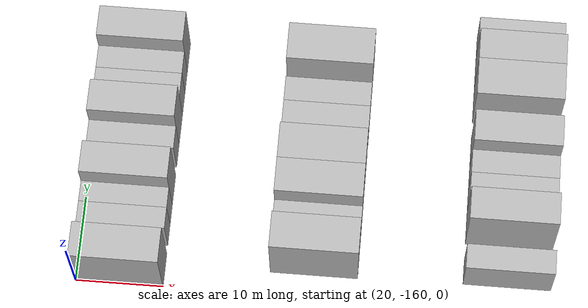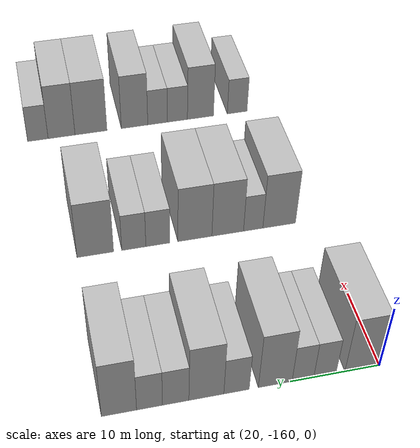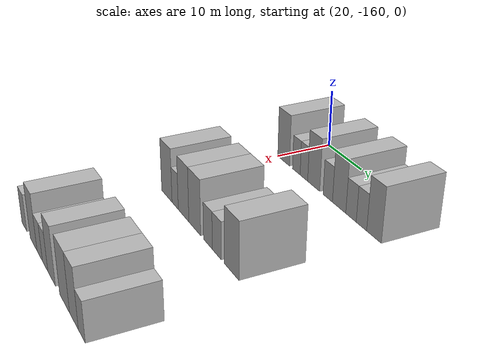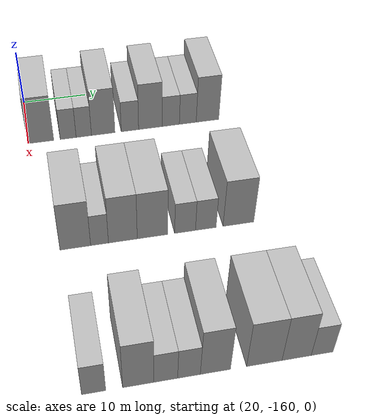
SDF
<sdf version="1.6">
 <world name="default">
  <model name="building_24">
   <static>1</static>
   <pose>25.0000 -158.1047 0 0.000000 0.000000 0.000000</pose>
   <link name="link">
    <pose>0 0 4.50 0 0 0</pose>
    <collision name="collision"><geometry><box><size>10.0000 4.0403 9.0000</size></box></geometry></collision>
    <visual name="visual">
     <cast_shadows>0</cast_shadows>
     <geometry><box><size>10.0000 4.0403 9.0000</size></box></geometry>
     <material>
      <script>
       <uri>model://HANNAS_wall/materials/scripts</uri>
       <uri>model://HANNAS_wall/materials/textures</uri>
       <name>vrc/HANNAS_wall</name>
      </script>
     </material>
    </visual>
   </link>
  </model>
  <model name="building_25">
   <static>1</static>
   <pose>25.0000 -153.8327 0 0.000000 0.000000 0.000000</pose>
   <link name="link">
    <pose>0 0 3.00 0 0 0</pose>
    <collision name="collision"><geometry><box><size>10.0000 2.5037 6.0000</size></box></geometry></collision>
    <visual name="visual">
     <cast_shadows>0</cast_shadows>
     <geometry><box><size>10.0000 2.5037 6.0000</size></box></geometry>
     <material>
      <script>
       <uri>model://HANNAS_wall/materials/scripts</uri>
       <uri>model://HANNAS_wall/materials/textures</uri>
       <name>vrc/HANNAS_wall</name>
      </script>
     </material>
    </visual>
   </link>
  </model>
  <model name="building_26">
   <static>1</static>
   <pose>25.0000 -151.3712 0 0.000000 0.000000 0.000000</pose>
   <link name="link">
    <pose>0 0 3.00 0 0 0</pose>
    <collision name="collision"><geometry><box><size>10.0000 2.4193 6.0000</size></box></geometry></collision>
    <visual name="visual">
     <cast_shadows>0</cast_shadows>
     <geometry><box><size>10.0000 2.4193 6.0000</size></box></geometry>
     <material>
      <script>
       <uri>model://HANNAS_wall/materials/scripts</uri>
       <uri>model://HANNAS_wall/materials/textures</uri>
       <name>vrc/HANNAS_wall</name>
      </script>
     </material>
    </visual>
   </link>
  </model>
  <model name="building_27">
   <static>1</static>
   <pose>25.0000 -148.2993 0 0.000000 0.000000 0.000000</pose>
   <link name="link">
    <pose>0 0 4.50 0 0 0</pose>
    <collision name="collision"><geometry><box><size>10.0000 3.7246 9.0000</size></box></geometry></collision>
    <visual name="visual">
     <cast_shadows>0</cast_shadows>
     <geometry><box><size>10.0000 3.7246 9.0000</size></box></geometry>
     <material>
      <script>
       <uri>model://HANNAS_wall/materials/scripts</uri>
       <uri>model://HANNAS_wall/materials/textures</uri>
       <name>vrc/HANNAS_wall</name>
      </script>
     </material>
    </visual>
   </link>
  </model>
  <model name="building_28">
   <static>1</static>
   <pose>25.0000 -144.0534 0 0.000000 0.000000 0.000000</pose>
   <link name="link">
    <pose>0 0 3.00 0 0 0</pose>
    <collision name="collision"><geometry><box><size>10.0000 2.7671 6.0000</size></box></geometry></collision>
    <visual name="visual">
     <cast_shadows>0</cast_shadows>
     <geometry><box><size>10.0000 2.7671 6.0000</size></box></geometry>
     <material>
      <script>
       <uri>model://HANNAS_wall/materials/scripts</uri>
       <uri>model://HANNAS_wall/materials/textures</uri>
       <name>vrc/HANNAS_wall</name>
      </script>
     </material>
    </visual>
   </link>
  </model>
  <model name="building_29">
   <static>1</static>
   <pose>25.0000 -140.7828 0 0.000000 0.000000 0.000000</pose>
   <link name="link">
    <pose>0 0 4.50 0 0 0</pose>
    <collision name="collision"><geometry><box><size>10.0000 3.7740 9.0000</size></box></geometry></collision>
    <visual name="visual">
     <cast_shadows>0</cast_shadows>
     <geometry><box><size>10.0000 3.7740 9.0000</size></box></geometry>
     <material>
      <script>
       <uri>model://HANNAS_wall/materials/scripts</uri>
       <uri>model://HANNAS_wall/materials/textures</uri>
       <name>vrc/HANNAS_wall</name>
      </script>
     </material>
    </visual>
   </link>
  </model>
  <model name="building_30">
   <static>1</static>
   <pose>25.0000 -137.4815 0 0.000000 0.000000 0.000000</pose>
   <link name="link">
    <pose>0 0 3.00 0 0 0</pose>
    <collision name="collision"><geometry><box><size>10.0000 2.8286 6.0000</size></box></geometry></collision>
    <visual name="visual">
     <cast_shadows>0</cast_shadows>
     <geometry><box><size>10.0000 2.8286 6.0000</size></box></geometry>
     <material>
      <script>
       <uri>model://HANNAS_wall/materials/scripts</uri>
       <uri>model://HANNAS_wall/materials/textures</uri>
       <name>vrc/HANNAS_wall</name>
      </script>
     </material>
    </visual>
   </link>
  </model>
  <model name="building_31">
   <static>1</static>
   <pose>25.0000 -134.6977 0 0.000000 0.000000 0.000000</pose>
   <link name="link">
    <pose>0 0 3.00 0 0 0</pose>
    <collision name="collision"><geometry><box><size>10.0000 2.7391 6.0000</size></box></geometry></collision>
    <visual name="visual">
     <cast_shadows>0</cast_shadows>
     <geometry><box><size>10.0000 2.7391 6.0000</size></box></geometry>
     <material>
      <script>
       <uri>model://HANNAS_wall/materials/scripts</uri>
       <uri>model://HANNAS_wall/materials/textures</uri>
       <name>vrc/HANNAS_wall</name>
      </script>
     </material>
    </visual>
   </link>
  </model>
  <model name="building_32">
   <static>1</static>
   <pose>25.0000 -131.4777 0 0.000000 0.000000 0.000000</pose>
   <link name="link">
    <pose>0 0 4.50 0 0 0</pose>
    <collision name="collision"><geometry><box><size>10.0000 3.7009 9.0000</size></box></geometry></collision>
    <visual name="visual">
     <cast_shadows>0</cast_shadows>
     <geometry><box><size>10.0000 3.7009 9.0000</size></box></geometry>
     <material>
      <script>
       <uri>model://HANNAS_wall/materials/scripts</uri>
       <uri>model://HANNAS_wall/materials/textures</uri>
       <name>vrc/HANNAS_wall</name>
      </script>
     </material>
    </visual>
   </link>
  </model>
  <model name="building_158">
   <static>1</static>
   <pose>47.0000 -155.2404 0 0.000000 0.000000 0.000000</pose>
   <link name="link">
    <pose>0 0 4.50 0 0 0</pose>
    <collision name="collision"><geometry><box><size>10.0000 4.2071 9.0000</size></box></geometry></collision>
    <visual name="visual">
     <cast_shadows>0</cast_shadows>
     <geometry><box><size>10.0000 4.2071 9.0000</size></box></geometry>
     <material>
      <script>
       <uri>model://HANNAS_wall/materials/scripts</uri>
       <uri>model://HANNAS_wall/materials/textures</uri>
       <name>vrc/HANNAS_wall</name>
      </script>
     </material>
    </visual>
   </link>
  </model>
  <model name="building_159">
   <static>1</static>
   <pose>47.0000 -151.9055 0 0.000000 0.000000 0.000000</pose>
   <link name="link">
    <pose>0 0 3.00 0 0 0</pose>
    <collision name="collision"><geometry><box><size>10.0000 2.4627 6.0000</size></box></geometry></collision>
    <visual name="visual">
     <cast_shadows>0</cast_shadows>
     <geometry><box><size>10.0000 2.4627 6.0000</size></box></geometry>
     <material>
      <script>
       <uri>model://HANNAS_wall/materials/scripts</uri>
       <uri>model://HANNAS_wall/materials/textures</uri>
       <name>vrc/HANNAS_wall</name>
      </script>
     </material>
    </visual>
   </link>
  </model>
  <model name="building_160">
   <static>1</static>
   <pose>47.0000 -148.6690 0 0.000000 0.000000 0.000000</pose>
   <link name="link">
    <pose>0 0 4.50 0 0 0</pose>
    <collision name="collision"><geometry><box><size>10.0000 4.0103 9.0000</size></box></geometry></collision>
    <visual name="visual">
     <cast_shadows>0</cast_shadows>
     <geometry><box><size>10.0000 4.0103 9.0000</size></box></geometry>
     <material>
      <script>
       <uri>model://HANNAS_wall/materials/scripts</uri>
       <uri>model://HANNAS_wall/materials/textures</uri>
       <name>vrc/HANNAS_wall</name>
      </script>
     </material>
    </visual>
   </link>
  </model>
  <model name="building_161">
   <static>1</static>
   <pose>47.0000 -144.5327 0 0.000000 0.000000 0.000000</pose>
   <link name="link">
    <pose>0 0 4.50 0 0 0</pose>
    <collision name="collision"><geometry><box><size>10.0000 4.2622 9.0000</size></box></geometry></collision>
    <visual name="visual">
     <cast_shadows>0</cast_shadows>
     <geometry><box><size>10.0000 4.2622 9.0000</size></box></geometry>
     <material>
      <script>
       <uri>model://HANNAS_wall/materials/scripts</uri>
       <uri>model://HANNAS_wall/materials/textures</uri>
       <name>vrc/HANNAS_wall</name>
      </script>
     </material>
    </visual>
   </link>
  </model>
  <model name="building_162">
   <static>1</static>
   <pose>47.0000 -139.9137 0 0.000000 0.000000 0.000000</pose>
   <link name="link">
    <pose>0 0 3.00 0 0 0</pose>
    <collision name="collision"><geometry><box><size>10.0000 2.9758 6.0000</size></box></geometry></collision>
    <visual name="visual">
     <cast_shadows>0</cast_shadows>
     <geometry><box><size>10.0000 2.9758 6.0000</size></box></geometry>
     <material>
      <script>
       <uri>model://HANNAS_wall/materials/scripts</uri>
       <uri>model://HANNAS_wall/materials/textures</uri>
       <name>vrc/HANNAS_wall</name>
      </script>
     </material>
    </visual>
   </link>
  </model>
  <model name="building_163">
   <static>1</static>
   <pose>47.0000 -136.9492 0 0.000000 0.000000 0.000000</pose>
   <link name="link">
    <pose>0 0 3.00 0 0 0</pose>
    <collision name="collision"><geometry><box><size>10.0000 2.9533 6.0000</size></box></geometry></collision>
    <visual name="visual">
     <cast_shadows>0</cast_shadows>
     <geometry><box><size>10.0000 2.9533 6.0000</size></box></geometry>
     <material>
      <script>
       <uri>model://HANNAS_wall/materials/scripts</uri>
       <uri>model://HANNAS_wall/materials/textures</uri>
       <name>vrc/HANNAS_wall</name>
      </script>
     </material>
    </visual>
   </link>
  </model>
  <model name="building_164">
   <static>1</static>
   <pose>47.0000 -132.2496 0 0.000000 0.000000 0.000000</pose>
   <link name="link">
    <pose>0 0 4.50 0 0 0</pose>
    <collision name="collision"><geometry><box><size>10.0000 4.4460 9.0000</size></box></geometry></collision>
    <visual name="visual">
     <cast_shadows>0</cast_shadows>
     <geometry><box><size>10.0000 4.4460 9.0000</size></box></geometry>
     <material>
      <script>
       <uri>model://HANNAS_wall/materials/scripts</uri>
       <uri>model://HANNAS_wall/materials/textures</uri>
       <name>vrc/HANNAS_wall</name>
      </script>
     </material>
    </visual>
   </link>
  </model>
  <model name="building_283">
   <static>1</static>
   <pose>69.0000 -155.6148 0 0.000000 0.000000 0.000000</pose>
   <link name="link">
    <pose>0 0 3.00 0 0 0</pose>
    <collision name="collision"><geometry><box><size>10.0000 2.8537 6.0000</size></box></geometry></collision>
    <visual name="visual">
     <cast_shadows>0</cast_shadows>
     <geometry><box><size>10.0000 2.8537 6.0000</size></box></geometry>
     <material>
      <script>
       <uri>model://HANNAS_wall/materials/scripts</uri>
       <uri>model://HANNAS_wall/materials/textures</uri>
       <name>vrc/HANNAS_wall</name>
      </script>
     </material>
    </visual>
   </link>
  </model>
  <model name="building_284">
   <static>1</static>
   <pose>69.0000 -150.3148 0 0.000000 0.000000 0.000000</pose>
   <link name="link">
    <pose>0 0 4.50 0 0 0</pose>
    <collision name="collision"><geometry><box><size>10.0000 3.7462 9.0000</size></box></geometry></collision>
    <visual name="visual">
     <cast_shadows>0</cast_shadows>
     <geometry><box><size>10.0000 3.7462 9.0000</size></box></geometry>
     <material>
      <script>
       <uri>model://HANNAS_wall/materials/scripts</uri>
       <uri>model://HANNAS_wall/materials/textures</uri>
       <name>vrc/HANNAS_wall</name>
      </script>
     </material>
    </visual>
   </link>
  </model>
  <model name="building_285">
   <static>1</static>
   <pose>69.0000 -147.0103 0 0.000000 0.000000 0.000000</pose>
   <link name="link">
    <pose>0 0 3.00 0 0 0</pose>
    <collision name="collision"><geometry><box><size>10.0000 2.8628 6.0000</size></box></geometry></collision>
    <visual name="visual">
     <cast_shadows>0</cast_shadows>
     <geometry><box><size>10.0000 2.8628 6.0000</size></box></geometry>
     <material>
      <script>
       <uri>model://HANNAS_wall/materials/scripts</uri>
       <uri>model://HANNAS_wall/materials/textures</uri>
       <name>vrc/HANNAS_wall</name>
      </script>
     </material>
    </visual>
   </link>
  </model>
  <model name="building_286">
   <static>1</static>
   <pose>69.0000 -144.2001 0 0.000000 0.000000 0.000000</pose>
   <link name="link">
    <pose>0 0 3.00 0 0 0</pose>
    <collision name="collision"><geometry><box><size>10.0000 2.7576 6.0000</size></box></geometry></collision>
    <visual name="visual">
     <cast_shadows>0</cast_shadows>
     <geometry><box><size>10.0000 2.7576 6.0000</size></box></geometry>
     <material>
      <script>
       <uri>model://HANNAS_wall/materials/scripts</uri>
       <uri>model://HANNAS_wall/materials/textures</uri>
       <name>vrc/HANNAS_wall</name>
      </script>
     </material>
    </visual>
   </link>
  </model>
  <model name="building_287">
   <static>1</static>
   <pose>69.0000 -140.9666 0 0.000000 0.000000 0.000000</pose>
   <link name="link">
    <pose>0 0 4.50 0 0 0</pose>
    <collision name="collision"><geometry><box><size>10.0000 3.7094 9.0000</size></box></geometry></collision>
    <visual name="visual">
     <cast_shadows>0</cast_shadows>
     <geometry><box><size>10.0000 3.7094 9.0000</size></box></geometry>
     <material>
      <script>
       <uri>model://HANNAS_wall/materials/scripts</uri>
       <uri>model://HANNAS_wall/materials/textures</uri>
       <name>vrc/HANNAS_wall</name>
      </script>
     </material>
    </visual>
   </link>
  </model>
  <model name="building_288">
   <static>1</static>
   <pose>69.0000 -134.8986 0 0.000000 0.000000 0.000000</pose>
   <link name="link">
    <pose>0 0 4.50 0 0 0</pose>
    <collision name="collision"><geometry><box><size>10.0000 4.4265 9.0000</size></box></geometry></collision>
    <visual name="visual">
     <cast_shadows>0</cast_shadows>
     <geometry><box><size>10.0000 4.4265 9.0000</size></box></geometry>
     <material>
      <script>
       <uri>model://HANNAS_wall/materials/scripts</uri>
       <uri>model://HANNAS_wall/materials/textures</uri>
       <name>vrc/HANNAS_wall</name>
      </script>
     </material>
    </visual>
   </link>
  </model>
  <model name="building_289">
   <static>1</static>
   <pose>69.0000 -130.8397 0 0.000000 0.000000 0.000000</pose>
   <link name="link">
    <pose>0 0 4.50 0 0 0</pose>
    <collision name="collision"><geometry><box><size>10.0000 3.6914 9.0000</size></box></geometry></collision>
    <visual name="visual">
     <cast_shadows>0</cast_shadows>
     <geometry><box><size>10.0000 3.6914 9.0000</size></box></geometry>
     <material>
      <script>
       <uri>model://HANNAS_wall/materials/scripts</uri>
       <uri>model://HANNAS_wall/materials/textures</uri>
       <name>vrc/HANNAS_wall</name>
      </script>
     </material>
    </visual>
   </link>
  </model>
  <model name="building_290">
   <static>1</static>
   <pose>69.0000 -127.5987 0 0.000000 0.000000 0.000000</pose>
   <link name="link">
    <pose>0 0 3.00 0 0 0</pose>
    <collision name="collision"><geometry><box><size>10.0000 2.7906 6.0000</size></box></geometry></collision>
    <visual name="visual">
     <cast_shadows>0</cast_shadows>
     <geometry><box><size>10.0000 2.7906 6.0000</size></box></geometry>
     <material>
      <script>
       <uri>model://HANNAS_wall/materials/scripts</uri>
       <uri>model://HANNAS_wall/materials/textures</uri>
       <name>vrc/HANNAS_wall</name>
      </script>
     </material>
    </visual>
   </link>
  </model>
 </world>
</sdf>
